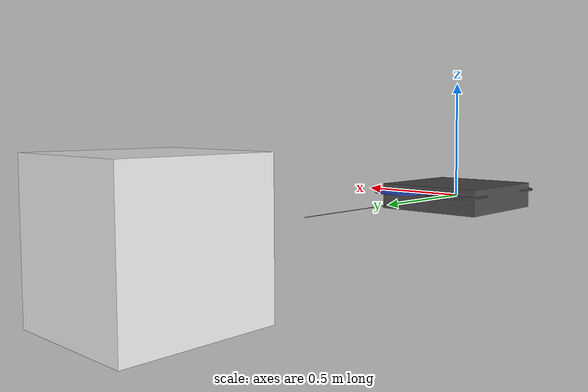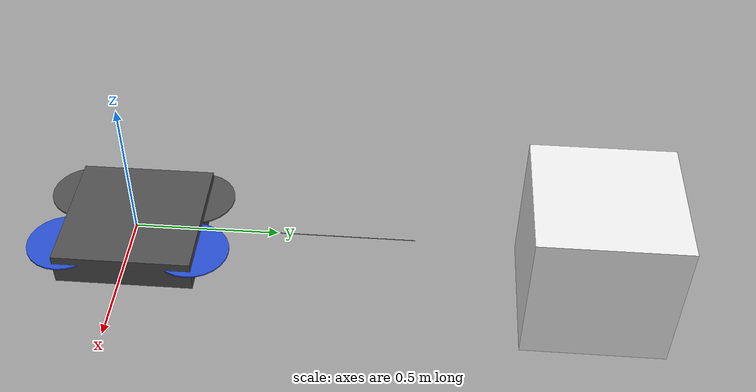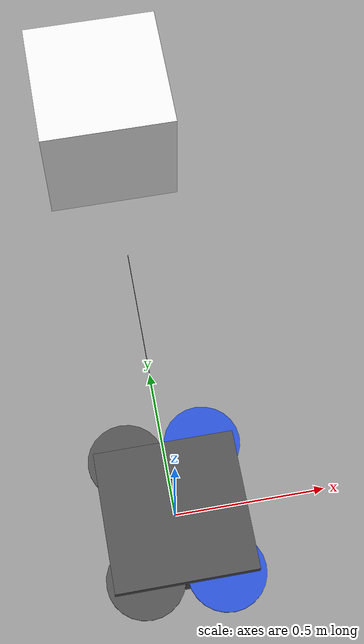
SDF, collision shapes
<!-- DO NOT EDIT: Generated from iris.sdf.jinja -->
<sdf version='1.6'>
  <model name='single_iris_payload_visual'>
    <link name='base_link'>
      <pose>0 0 0 0 0 0</pose>
      <inertial>
        <pose>0 0 0 0 0 0</pose>
        <mass>1.5</mass>
        <inertia>
          <ixx>0.029125</ixx>
          <ixy>0</ixy>
          <ixz>0</ixz>
          <iyy>0.029125</iyy>
          <iyz>0</iyz>
          <izz>0.055225</izz>
        </inertia>
      </inertial>
      <collision name='base_link_inertia_collision'>
        <pose>0 0 0 0 0 0</pose>
        <geometry>
          <box>
            <size>0.47 0.47 0.11</size>
          </box>
        </geometry>
        <surface>
          <contact>
            <ode>
              <min_depth>0.001</min_depth>
              <max_vel>0</max_vel>
            </ode>
          </contact>
          <friction>
            <ode/>
          </friction>
        </surface>
      </collision>
      <visual name='base_link_inertia_visual'>
        <pose>0 0 0 0 0 0</pose>
        <geometry>
          <mesh>
            <scale>1 1 1</scale>
            <uri>model://iris/meshes/iris.stl</uri>
          </mesh>
        </geometry>
        <material>
          <script>
            <name>Gazebo/DarkGrey</name>
            <uri>file://media/materials/scripts/gazebo.material</uri>
          </script>
        </material>
      </visual>
      <sensor name="bottom_camera_sensor" type="camera">
        <pose>0 0.0175 -0.03 3.141593 1.570797 3.141593</pose>
        <update_rate>30</update_rate>
        <camera>
          <horizontal_fov>0.973559</horizontal_fov>
          <image>
            <width>640</width>
            <height>360</height>
          </image>
          <clip>
            <near>0.01</near>
            <far>10</far>
          </clip>
        </camera>
	<plugin name="camera_controller" filename="libgazebo_ros_camera.so">
          <alwaysOn>true</alwaysOn>
          <updateRate>30</updateRate>
    	  <robotNamespace>/</robotNamespace>
          <cameraName>iris_0/bottom</cameraName>
          <imageTopicName>image_raw</imageTopicName>
	  <cameraInfoTopicName>camera_info</cameraInfoTopicName>
	  <frameName>body</frameName>
      	</plugin>
    </sensor>
    <sensor name="front_camera_sensor" type="camera">
        <pose>0.2 0 0 3.141593 3.141593 3.141593</pose>
        <update_rate>30</update_rate>
        <camera>
          <horizontal_fov>1.39949</horizontal_fov>
          <image>
            <width>640</width>
            <height>360</height>
          </image>
          <clip>
            <near>0.01</near>
            <far>10</far>
          </clip>
        </camera>
	<plugin name="camera_controller" filename="libgazebo_ros_camera.so">
	  <alwaysOn>true</alwaysOn>
	  <updateRate>30</updateRate>
    	  <robotNamespace>/</robotNamespace>
	  <cameraName>iris_0/front</cameraName>
	  <imageTopicName>image_raw</imageTopicName>
	  <cameraInfoTopicName>camera_info</cameraInfoTopicName>
          <frameName>body</frameName>
      	</plugin>
      </sensor>
      <gravity>1</gravity>
      <velocity_decay/>
    </link>
    <link name='/imu_link'>
      <pose>0 0 0 0 0 0</pose>
      <inertial>
        <pose>0 0 0 0 0 0</pose>
        <mass>0.015</mass>
        <inertia>
          <ixx>1e-05</ixx>
          <ixy>0</ixy>
          <ixz>0</ixz>
          <iyy>1e-05</iyy>
          <iyz>0</iyz>
          <izz>1e-05</izz>
        </inertia>
      </inertial>
    </link>
    <joint name='/imu_joint' type='revolute'>
      <child>/imu_link</child>
      <parent>base_link</parent>
      <axis>
        <xyz>1 0 0</xyz>
        <limit>
          <lower>0</lower>
          <upper>0</upper>
          <effort>0</effort>
          <velocity>0</velocity>
        </limit>
        <dynamics>
          <spring_reference>0</spring_reference>
          <spring_stiffness>0</spring_stiffness>
        </dynamics>
        <use_parent_model_frame>1</use_parent_model_frame>
      </axis>
    </joint>
    <link name='rotor_0'>
      <pose>0.13 -0.22 0.023 0 0 0</pose>
      <inertial>
        <pose>0 0 0 0 0 0</pose>
        <mass>0.005</mass>
        <inertia>
          <ixx>9.75e-07</ixx>
          <ixy>0</ixy>
          <ixz>0</ixz>
          <iyy>0.000273104</iyy>
          <iyz>0</iyz>
          <izz>0.000274004</izz>
        </inertia>
      </inertial>
      <collision name='rotor_0_collision'>
        <pose>0 0 0 0 0 0</pose>
        <geometry>
          <cylinder>
            <length>0.005</length>
            <radius>0.128</radius>
          </cylinder>
        </geometry>
        <surface>
          <contact>
            <ode/>
          </contact>
          <friction>
            <ode/>
          </friction>
        </surface>
      </collision>
      <visual name='rotor_0_visual'>
        <pose>0 0 0 0 0 0</pose>
        <geometry>
          <mesh>
            <scale>1 1 1</scale>
            <uri>model://iris/meshes/iris_prop_ccw.dae</uri>
          </mesh>
        </geometry>
        <material>
          <script>
            <name>Gazebo/Blue</name>
            <uri>file://media/materials/scripts/gazebo.material</uri>
          </script>
        </material>
      </visual>
      <gravity>1</gravity>
      <velocity_decay/>
    </link>
    <joint name='rotor_0_joint' type='revolute'>
      <child>rotor_0</child>
      <parent>base_link</parent>
      <axis>
        <xyz>0 0 1</xyz>
        <limit>
          <lower>-1e+16</lower>
          <upper>1e+16</upper>
        </limit>
        <dynamics>
          <spring_reference>0</spring_reference>
          <spring_stiffness>0</spring_stiffness>
        </dynamics>
        <use_parent_model_frame>1</use_parent_model_frame>
      </axis>
    </joint>
    <link name='rotor_1'>
      <pose>-0.13 0.2 0.023 0 0 0</pose>
      <inertial>
        <pose>0 0 0 0 0 0</pose>
        <mass>0.005</mass>
        <inertia>
          <ixx>9.75e-07</ixx>
          <ixy>0</ixy>
          <ixz>0</ixz>
          <iyy>0.000273104</iyy>
          <iyz>0</iyz>
          <izz>0.000274004</izz>
        </inertia>
      </inertial>
      <collision name='rotor_1_collision'>
        <pose>0 0 0 0 0 0</pose>
        <geometry>
          <cylinder>
            <length>0.005</length>
            <radius>0.128</radius>
          </cylinder>
        </geometry>
        <surface>
          <contact>
            <ode/>
          </contact>
          <friction>
            <ode/>
          </friction>
        </surface>
      </collision>
      <visual name='rotor_1_visual'>
        <pose>0 0 0 0 0 0</pose>
        <geometry>
          <mesh>
            <scale>1 1 1</scale>
            <uri>model://iris/meshes/iris_prop_ccw.dae</uri>
          </mesh>
        </geometry>
        <material>
          <script>
            <name>Gazebo/DarkGrey</name>
            <uri>file://media/materials/scripts/gazebo.material</uri>
          </script>
        </material>
      </visual>
      <gravity>1</gravity>
      <velocity_decay/>
    </link>
    <joint name='rotor_1_joint' type='revolute'>
      <child>rotor_1</child>
      <parent>base_link</parent>
      <axis>
        <xyz>0 0 1</xyz>
        <limit>
          <lower>-1e+16</lower>
          <upper>1e+16</upper>
        </limit>
        <dynamics>
          <spring_reference>0</spring_reference>
          <spring_stiffness>0</spring_stiffness>
        </dynamics>
        <use_parent_model_frame>1</use_parent_model_frame>
      </axis>
    </joint>
    <link name='rotor_2'>
      <pose>0.13 0.22 0.023 0 0 0</pose>
      <inertial>
        <pose>0 0 0 0 0 0</pose>
        <mass>0.005</mass>
        <inertia>
          <ixx>9.75e-07</ixx>
          <ixy>0</ixy>
          <ixz>0</ixz>
          <iyy>0.000273104</iyy>
          <iyz>0</iyz>
          <izz>0.000274004</izz>
        </inertia>
      </inertial>
      <collision name='rotor_2_collision'>
        <pose>0 0 0 0 0 0</pose>
        <geometry>
          <cylinder>
            <length>0.005</length>
            <radius>0.128</radius>
          </cylinder>
        </geometry>
        <surface>
          <contact>
            <ode/>
          </contact>
          <friction>
            <ode/>
          </friction>
        </surface>
      </collision>
      <visual name='rotor_2_visual'>
        <pose>0 0 0 0 0 0</pose>
        <geometry>
          <mesh>
            <scale>1 1 1</scale>
            <uri>model://iris/meshes/iris_prop_cw.dae</uri>
          </mesh>
        </geometry>
        <material>
          <script>
            <name>Gazebo/Blue</name>
            <uri>file://media/materials/scripts/gazebo.material</uri>
          </script>
        </material>
      </visual>
      <gravity>1</gravity>
      <velocity_decay/>
    </link>
    <joint name='rotor_2_joint' type='revolute'>
      <child>rotor_2</child>
      <parent>base_link</parent>
      <axis>
        <xyz>0 0 1</xyz>
        <limit>
          <lower>-1e+16</lower>
          <upper>1e+16</upper>
        </limit>
        <dynamics>
          <spring_reference>0</spring_reference>
          <spring_stiffness>0</spring_stiffness>
        </dynamics>
        <use_parent_model_frame>1</use_parent_model_frame>
      </axis>
    </joint>
    <link name='rotor_3'>
      <pose>-0.13 -0.2 0.023 0 0 0</pose>
      <inertial>
        <pose>0 0 0 0 0 0</pose>
        <mass>0.005</mass>
        <inertia>
          <ixx>9.75e-07</ixx>
          <ixy>0</ixy>
          <ixz>0</ixz>
          <iyy>0.000273104</iyy>
          <iyz>0</iyz>
          <izz>0.000274004</izz>
        </inertia>
      </inertial>
      <collision name='rotor_3_collision'>
        <pose>0 0 0 0 0 0</pose>
        <geometry>
          <cylinder>
            <length>0.005</length>
            <radius>0.128</radius>
          </cylinder>
        </geometry>
        <surface>
          <contact>
            <ode/>
          </contact>
          <friction>
            <ode/>
          </friction>
        </surface>
      </collision>
      <visual name='rotor_3_visual'>
        <pose>0 0 0 0 0 0</pose>
        <geometry>
          <mesh>
            <scale>1 1 1</scale>
            <uri>model://iris/meshes/iris_prop_cw.dae</uri>
          </mesh>
        </geometry>
        <material>
          <script>
            <name>Gazebo/DarkGrey</name>
            <uri>file://media/materials/scripts/gazebo.material</uri>
          </script>
        </material>
      </visual>
      <gravity>1</gravity>
      <velocity_decay/>
    </link>
    <joint name='rotor_3_joint' type='revolute'>
      <child>rotor_3</child>
      <parent>base_link</parent>
      <axis>
        <xyz>0 0 1</xyz>
        <limit>
          <lower>-1e+16</lower>
          <upper>1e+16</upper>
        </limit>
        <dynamics>
          <spring_reference>0</spring_reference>
          <spring_stiffness>0</spring_stiffness>
        </dynamics>
        <use_parent_model_frame>1</use_parent_model_frame>
      </axis>
    </joint>
    <plugin name='rosbag' filename='libgazebo_multirotor_base_plugin.so'>
      <robotNamespace/>
      <linkName>base_link</linkName>
      <rotorVelocitySlowdownSim>10</rotorVelocitySlowdownSim>
    </plugin>
    <plugin name='front_right_motor_model' filename='libgazebo_motor_model.so'>
      <robotNamespace/>
      <jointName>rotor_0_joint</jointName>
      <linkName>rotor_0</linkName>
      <turningDirection>ccw</turningDirection>
      <timeConstantUp>0.0125</timeConstantUp>
      <timeConstantDown>0.025</timeConstantDown>
      <maxRotVelocity>1100</maxRotVelocity>
      <motorConstant>5.84e-06</motorConstant>
      <momentConstant>0.06</momentConstant>
      <commandSubTopic>/gazebo/command/motor_speed</commandSubTopic>
      <motorNumber>0</motorNumber>
      <rotorDragCoefficient>0.000175</rotorDragCoefficient>
      <rollingMomentCoefficient>1e-06</rollingMomentCoefficient>
      <motorSpeedPubTopic>/motor_speed/0</motorSpeedPubTopic>
      <rotorVelocitySlowdownSim>10</rotorVelocitySlowdownSim>
    </plugin>
    <plugin name='back_left_motor_model' filename='libgazebo_motor_model.so'>
      <robotNamespace/>
      <jointName>rotor_1_joint</jointName>
      <linkName>rotor_1</linkName>
      <turningDirection>ccw</turningDirection>
      <timeConstantUp>0.0125</timeConstantUp>
      <timeConstantDown>0.025</timeConstantDown>
      <maxRotVelocity>1100</maxRotVelocity>
      <motorConstant>5.84e-06</motorConstant>
      <momentConstant>0.06</momentConstant>
      <commandSubTopic>/gazebo/command/motor_speed</commandSubTopic>
      <motorNumber>1</motorNumber>
      <rotorDragCoefficient>0.000175</rotorDragCoefficient>
      <rollingMomentCoefficient>1e-06</rollingMomentCoefficient>
      <motorSpeedPubTopic>/motor_speed/1</motorSpeedPubTopic>
      <rotorVelocitySlowdownSim>10</rotorVelocitySlowdownSim>
    </plugin>
    <plugin name='front_left_motor_model' filename='libgazebo_motor_model.so'>
      <robotNamespace/>
      <jointName>rotor_2_joint</jointName>
      <linkName>rotor_2</linkName>
      <turningDirection>cw</turningDirection>
      <timeConstantUp>0.0125</timeConstantUp>
      <timeConstantDown>0.025</timeConstantDown>
      <maxRotVelocity>1100</maxRotVelocity>
      <motorConstant>5.84e-06</motorConstant>
      <momentConstant>0.06</momentConstant>
      <commandSubTopic>/gazebo/command/motor_speed</commandSubTopic>
      <motorNumber>2</motorNumber>
      <rotorDragCoefficient>0.000175</rotorDragCoefficient>
      <rollingMomentCoefficient>1e-06</rollingMomentCoefficient>
      <motorSpeedPubTopic>/motor_speed/2</motorSpeedPubTopic>
      <rotorVelocitySlowdownSim>10</rotorVelocitySlowdownSim>
    </plugin>
    <plugin name='back_right_motor_model' filename='libgazebo_motor_model.so'>
      <robotNamespace/>
      <jointName>rotor_3_joint</jointName>
      <linkName>rotor_3</linkName>
      <turningDirection>cw</turningDirection>
      <timeConstantUp>0.0125</timeConstantUp>
      <timeConstantDown>0.025</timeConstantDown>
      <maxRotVelocity>1100</maxRotVelocity>
      <motorConstant>5.84e-06</motorConstant>
      <momentConstant>0.06</momentConstant>
      <commandSubTopic>/gazebo/command/motor_speed</commandSubTopic>
      <motorNumber>3</motorNumber>
      <rotorDragCoefficient>0.000175</rotorDragCoefficient>
      <rollingMomentCoefficient>1e-06</rollingMomentCoefficient>
      <motorSpeedPubTopic>/motor_speed/3</motorSpeedPubTopic>
      <rotorVelocitySlowdownSim>10</rotorVelocitySlowdownSim>
    </plugin>
    <model name='gps0'>
      <link name='link'>
        <pose>0 0 0 0 0 0</pose>
        <inertial>
          <pose>0 0 0 0 0 0</pose>
          <mass>0.01</mass>
          <inertia>
            <ixx>2.1733e-06</ixx>
            <ixy>0</ixy>
            <ixz>0</ixz>
            <iyy>2.1733e-06</iyy>
            <iyz>0</iyz>
            <izz>1.8e-07</izz>
          </inertia>
        </inertial>
        <visual name='visual'>
          <geometry>
            <cylinder>
              <radius>0.01</radius>
              <length>0.002</length>
            </cylinder>
          </geometry>
          <material>
            <script>
              <name>Gazebo/Black</name>
              <uri>__default__</uri>
            </script>
          </material>
        </visual>
        <sensor name='gps' type='gps'>
          <pose>0 0 0 0 0 0</pose>
          <plugin name='gps_plugin' filename='libgazebo_gps_plugin.so'>
            <robotNamespace/>
            <gpsNoise>1</gpsNoise>
            <gpsXYRandomWalk>2.0</gpsXYRandomWalk>
            <gpsZRandomWalk>4.0</gpsZRandomWalk>
            <gpsXYNoiseDensity>0.0002</gpsXYNoiseDensity>
            <gpsZNoiseDensity>0.0004</gpsZNoiseDensity>
            <gpsVXYNoiseDensity>0.2</gpsVXYNoiseDensity>
            <gpsVZNoiseDensity>0.4</gpsVZNoiseDensity>
          </plugin>
        </sensor>
      </link>
    </model>
    <joint name='gps0_joint' type='fixed'>
      <parent>base_link</parent>
      <child>gps0::link</child>
    </joint>
    <plugin name='groundtruth_plugin' filename='libgazebo_groundtruth_plugin.so'>
      <robotNamespace/>
    </plugin>
    <plugin name='magnetometer_plugin' filename='libgazebo_magnetometer_plugin.so'>
      <robotNamespace/>
      <pubRate>100</pubRate>
      <noiseDensity>0.0004</noiseDensity>
      <randomWalk>6.4e-06</randomWalk>
      <biasCorrelationTime>600</biasCorrelationTime>
      <magTopic>/mag</magTopic>
    </plugin>
    <plugin name='barometer_plugin' filename='libgazebo_barometer_plugin.so'>
      <robotNamespace/>
      <pubRate>50</pubRate>
      <baroTopic>/baro</baroTopic>
      <baroDriftPaPerSec>0</baroDriftPaPerSec>
    </plugin>
    <plugin name='mavlink_interface' filename='libgazebo_mavlink_interface.so'>
      <robotNamespace/>
      <imuSubTopic>/imu</imuSubTopic>
      <magSubTopic>/mag</magSubTopic>
      <baroSubTopic>/baro</baroSubTopic>
      <mavlink_addr>INADDR_ANY</mavlink_addr>
      <mavlink_tcp_port>4560</mavlink_tcp_port>
      <mavlink_udp_port>14560</mavlink_udp_port>
      <serialEnabled>0</serialEnabled>
      <serialDevice>/dev/ttyACM0</serialDevice>
      <baudRate>921600</baudRate>
      <qgc_addr>INADDR_ANY</qgc_addr>
      <qgc_udp_port>14550</qgc_udp_port>
      <sdk_addr>INADDR_ANY</sdk_addr>
      <sdk_udp_port>14540</sdk_udp_port>
      <hil_mode>0</hil_mode>
      <hil_state_level>0</hil_state_level>
      <send_vision_estimation>0</send_vision_estimation>
      <send_odometry>1</send_odometry>
      <enable_lockstep>1</enable_lockstep>
      <use_tcp>1</use_tcp>
      <motorSpeedCommandPubTopic>/gazebo/command/motor_speed</motorSpeedCommandPubTopic>
      <control_channels>
        <channel name='rotor1'>
          <input_index>0</input_index>
          <input_offset>0</input_offset>
          <input_scaling>1000</input_scaling>
          <zero_position_disarmed>0</zero_position_disarmed>
          <zero_position_armed>100</zero_position_armed>
          <joint_control_type>velocity</joint_control_type>
        </channel>
        <channel name='rotor2'>
          <input_index>1</input_index>
          <input_offset>0</input_offset>
          <input_scaling>1000</input_scaling>
          <zero_position_disarmed>0</zero_position_disarmed>
          <zero_position_armed>100</zero_position_armed>
          <joint_control_type>velocity</joint_control_type>
        </channel>
        <channel name='rotor3'>
          <input_index>2</input_index>
          <input_offset>0</input_offset>
          <input_scaling>1000</input_scaling>
          <zero_position_disarmed>0</zero_position_disarmed>
          <zero_position_armed>100</zero_position_armed>
          <joint_control_type>velocity</joint_control_type>
        </channel>
        <channel name='rotor4'>
          <input_index>3</input_index>
          <input_offset>0</input_offset>
          <input_scaling>1000</input_scaling>
          <zero_position_disarmed>0</zero_position_disarmed>
          <zero_position_armed>100</zero_position_armed>
          <joint_control_type>velocity</joint_control_type>
        </channel>
        <channel name='rotor5'>
          <input_index>4</input_index>
          <input_offset>1</input_offset>
          <input_scaling>324.6</input_scaling>
          <zero_position_disarmed>0</zero_position_disarmed>
          <zero_position_armed>0</zero_position_armed>
          <joint_control_type>velocity</joint_control_type>
          <joint_control_pid>
            <p>0.1</p>
            <i>0</i>
            <d>0</d>
            <iMax>0.0</iMax>
            <iMin>0.0</iMin>
            <cmdMax>2</cmdMax>
            <cmdMin>-2</cmdMin>
          </joint_control_pid>
          <joint_name>zephyr_delta_wing::propeller_joint</joint_name>
        </channel>
        <channel name='rotor6'>
          <input_index>5</input_index>
          <input_offset>0</input_offset>
          <input_scaling>0.524</input_scaling>
          <zero_position_disarmed>0</zero_position_disarmed>
          <zero_position_armed>0</zero_position_armed>
          <joint_control_type>position</joint_control_type>
          <joint_name>zephyr_delta_wing::flap_left_joint</joint_name>
          <joint_control_pid>
            <p>10.0</p>
            <i>0</i>
            <d>0</d>
            <iMax>0</iMax>
            <iMin>0</iMin>
            <cmdMax>20</cmdMax>
            <cmdMin>-20</cmdMin>
          </joint_control_pid>
        </channel>
        <channel name='rotor7'>
          <input_index>6</input_index>
          <input_offset>0</input_offset>
          <input_scaling>0.524</input_scaling>
          <zero_position_disarmed>0</zero_position_disarmed>
          <zero_position_armed>0</zero_position_armed>
          <joint_control_type>position</joint_control_type>
          <joint_name>zephyr_delta_wing::flap_right_joint</joint_name>
          <joint_control_pid>
            <p>10.0</p>
            <i>0</i>
            <d>0</d>
            <iMax>0</iMax>
            <iMin>0</iMin>
            <cmdMax>20</cmdMax>
            <cmdMin>-20</cmdMin>
          </joint_control_pid>
        </channel>
        <channel name='rotor8'>
          <input_index>7</input_index>
          <input_offset>0</input_offset>
          <input_scaling>0.524</input_scaling>
          <zero_position_disarmed>0</zero_position_disarmed>
          <zero_position_armed>0</zero_position_armed>
          <joint_control_type>position</joint_control_type>
        </channel>
      </control_channels>
    </plugin>
    <static>0</static>
    <plugin name='rotors_gazebo_imu_plugin' filename='libgazebo_imu_plugin.so'>
      <robotNamespace/>
      <linkName>/imu_link</linkName>
      <imuTopic>/imu</imuTopic>
      <gyroscopeNoiseDensity>0.00018665</gyroscopeNoiseDensity>
      <gyroscopeRandomWalk>3.8785e-05</gyroscopeRandomWalk>
      <gyroscopeBiasCorrelationTime>1000.0</gyroscopeBiasCorrelationTime>
      <gyroscopeTurnOnBiasSigma>0.0087</gyroscopeTurnOnBiasSigma>
      <accelerometerNoiseDensity>0.00186</accelerometerNoiseDensity>
      <accelerometerRandomWalk>0.006</accelerometerRandomWalk>
      <accelerometerBiasCorrelationTime>300.0</accelerometerBiasCorrelationTime>
      <accelerometerTurnOnBiasSigma>0.196</accelerometerTurnOnBiasSigma>
    </plugin>
    <plugin name="p3d_base_controller" filename="libgazebo_ros_p3d.so">
      <alwaysOn>true</alwaysOn>
      <updateRate>100.0</updateRate>
      <bodyName>base_link</bodyName>
      <topicName>gazebo_ground_truth_UAV0</topicName>
      <gaussianNoise>0</gaussianNoise>
      <frameName>/map</frameName>
      <xyzOffsets>0 0 0</xyzOffsets>
      <rpyOffsets>0 0 0</rpyOffsets>
    </plugin>
    <link name='payload_link'>
      <pose> 0 1.6 0 0 0 0 </pose>
      <velocity_decay>
        <linear>0.0</linear>
        <angular>0.0</angular>
      </velocity_decay>
      <gravity>1</gravity>
      <inertial>
        <mass>0.5</mass>
        <inertia>
          <ixx>0.1</ixx>
          <ixy>0</ixy>
          <ixz>0</ixz>
          <iyy>0.1</iyy>
          <iyz>0</iyz>
          <izz>0.1</izz>
        </inertia>
      </inertial>
      <collision name='collision'>
        <pose>0 0 0 0 -0 0</pose>
        <geometry>
          <box>
            <size>0.5 0.5 0.5</size>
          </box>
        </geometry>
      </collision>
      <visual name='visual'>
        <pose>0 0 0 0 -0 0</pose>
        <geometry>
          <box>
            <size>0.5 0.5 0.5</size>
          </box>
        </geometry>
        <material>
          <script>
            <name>Gazebo/White</name>
            <uri>file://media/materials/scripts/gazebo.material</uri>
          </script>
        </material>
      </visual>
    </link>
    <plugin name="p3d_payload_controller" filename="libgazebo_ros_p3d.so">
      <alwaysOn>true</alwaysOn>
      <updateRate>100.0</updateRate>
      <bodyName>payload_link</bodyName>
      <topicName>gazebo_ground_truth_payload</topicName>
      <gaussianNoise>0</gaussianNoise>
      <frameName>/map</frameName>
      <xyzOffsets>0 0 0</xyzOffsets>
      <rpyOffsets>1.5708 0 0</rpyOffsets>
    </plugin>
    <link name='cable_link'>
      <pose>0 0.675 0 1.57 0 0</pose>
      <kinematic>0</kinematic>
      <inertial>
        <mass>1e-3</mass>
        <inertia>
          <ixx>0.0000508</ixx>
          <ixy>0</ixy>
          <ixz>0</ixz>
          <iyy>0.000023</iyy>
          <iyz>0</iyz>
          <izz>0.000023</izz>
        </inertia>
      </inertial>
      <collision name='tether_collision'>
        <pose>0 0 0 0 0 0</pose>
        <geometry>
          <cylinder>
            <radius>0.001</radius>
            <length>0.6</length>
          </cylinder>
        </geometry>
        <surface>
          <friction>
            <ode>
              <mu>0.00</mu>
              <mu2>0.00</mu2>
            </ode>
          </friction>
        </surface>
      </collision>
      <visual name='tether_visual'>
        <pose>0 0 0 0 0 0</pose>
        <geometry>
          <cylinder>
            <radius>0.001</radius>
            <length>0.6</length>
          </cylinder>
        </geometry>
        <material>
          <script>
            <name>Gazebo/Black</name>
            <uri>file://media/materials/scripts/gazebo.material</uri>
          </script>
        </material>
      </visual>
    </link>
    <joint name='cable_to_payload' type='ball'>
      <parent>payload_link</parent>
      <child>cable_link</child>
      <pose>0 0 -0.675 0 0 0</pose>
    </joint>
    <joint name='cable_to_iris' type='ball'>
      <parent>base_link</parent>
      <child>cable_link</child>
      <pose>0 0 0.675 0 0 0</pose>
    </joint>
  </model>
</sdf>
